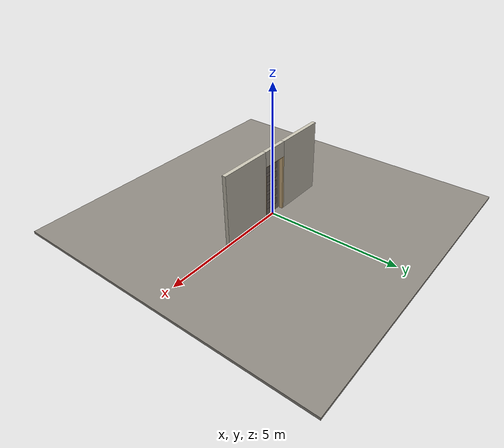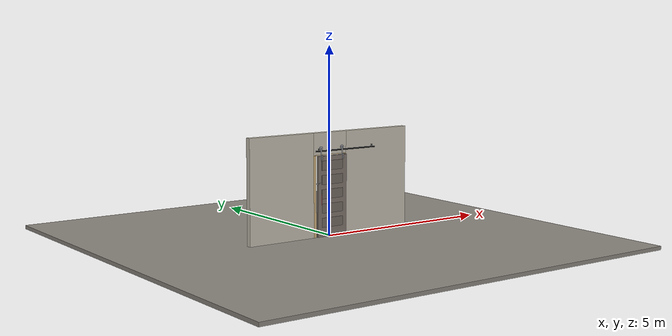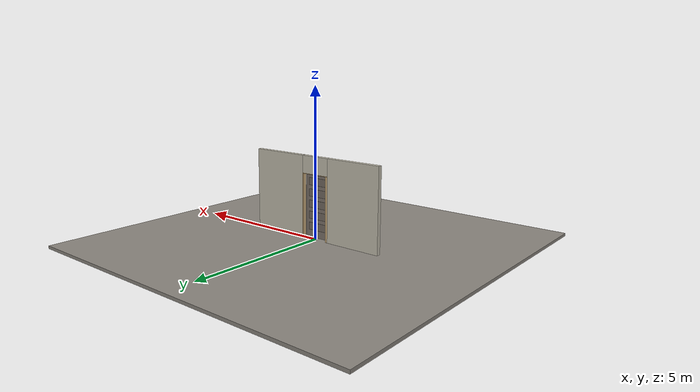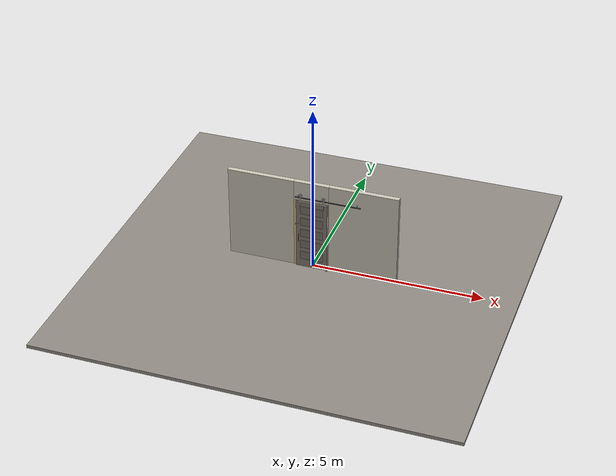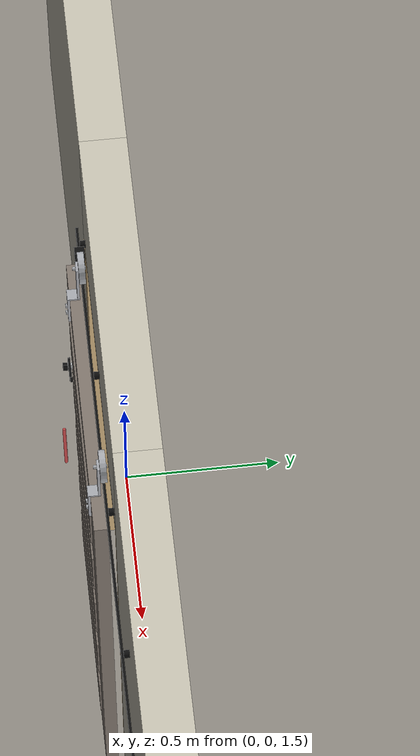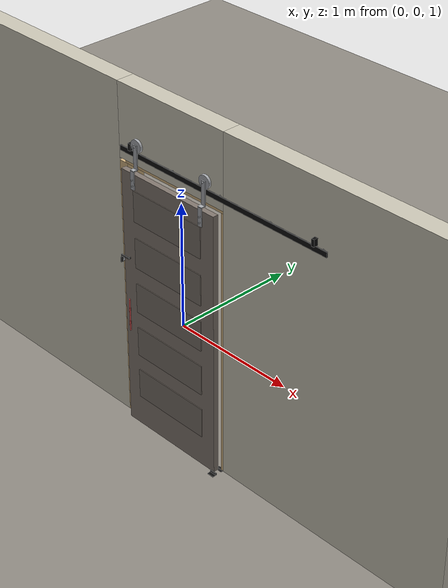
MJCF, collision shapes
<?xml version="1.0" ?>
<mujoco model="db0512_sliding_single_full">
  <compiler angle="radian" meshdir="../../hardware" texturedir="../../textures" autolimits="true" inertiafromgeom="false"/>
  <option timestep="0.002" integrator="implicitfast" cone="elliptic" impratio="10" noslip_iterations="3">
    <flag multiccd="enable"/>
  </option>
  <size memory="16M"/>
  <default>
    <geom condim="4" solref="0.005 1" solimp="0.95 0.99 0.001"/>
    <joint solreflimit="0.005 1" solimplimit="0.95 0.99 0.001"/>
    <tendon solreflimit="0.005 1"/>
    <equality solref="0.002 1"/>
  </default>
  <visual>
    <headlight ambient="0.4 0.4 0.4" diffuse="0.7 0.7 0.7" specular="0.2 0.2 0.2"/>
    <quality shadowsize="4096"/>
    <map znear="0.01" zfar="60"/>
  </visual>
  <asset>
    <mesh name="pull_2b47e55ff8" file="pull_2b47e55ff8.obj"/>
    <material name="mat_floor" rgba="0.55 0.53 0.5 1" specular="0.2" shininess="0.15" reflectance="0"/>
    <material name="mat_wall" rgba="0.78 0.76 0.7 1" specular="0.2" shininess="0.1" reflectance="0"/>
    <material name="mat_frame" rgba="0.82 0.7 0.5 1" specular="0.2" shininess="0.45" reflectance="0"/>
    <material name="mat_track" rgba="0.05 0.05 0.05 1" specular="0.38" shininess="0.3" reflectance="0.12"/>
    <material name="mat_leaf" rgba="0.5 0.46 0.425 1" specular="0.2" shininess="0.15" reflectance="0"/>
    <material name="mat_leaf_panel" rgba="0.46 0.423 0.391 1" specular="0.2" shininess="0.15" reflectance="0"/>
    <material name="mat_roller" rgba="0.65 0.66 0.68 1" specular="0.74" shininess="0.5" reflectance="0.36"/>
    <material name="mat_op_black_matte_metal" rgba="0.05 0.05 0.05 1" specular="0.38" shininess="0.3" reflectance="0.12"/>
    <material name="mat_teardrop" rgba="0.05 0.05 0.05 1" specular="0.38" shininess="0.3" reflectance="0.12"/>
    <material name="mat_hook" rgba="0.75 0.76 0.77 1" specular="0.8" shininess="0.65" reflectance="0.4"/>
    <texture name="skybox" type="skybox" builtin="gradient" rgb1="0.6 0.7 0.85" rgb2="0.9 0.92 0.95" width="256" height="256"/>
  </asset>
  <worldbody>
    <light name="sun" pos="1.5 -2.5 4" dir="-0.3 0.5 -0.8" directional="true" diffuse="0.8 0.8 0.8" specular="0.3 0.3 0.3" castshadow="true"/>
    <light name="fill" pos="-1.5 2.5 3" dir="0.3 -0.5 -0.7" directional="true" diffuse="0.35 0.35 0.4" castshadow="false"/>
    <camera name="robot_view" pos="0 -2.644375 1.817425" xyaxes="1 0 0 0 0.26963 0.962964" fovy="52"/>
    <camera name="far_view" pos="0 2.644375 1.817425" xyaxes="-1 0 0 0 -0.26963 0.962964" fovy="52"/>
    <camera name="iso" pos="2.009725 -2.221275 2.240525" xyaxes="0.741536 0.670913 0 -0.242917 0.268487 0.932151" fovy="46"/>
    <camera name="detail_handle" pos="-0.187 -0.9815 1.28" xyaxes="0.97561 0.219512 0 -0.070934 0.315262 0.94635" fovy="38"/>
    <geom name="floor" type="box" size="6 6 0.05" pos="0 0 -0.05" material="mat_floor" group="0" contype="1" conaffinity="1" friction="0.8 0.005 0.0001" density="2400"/>
    <geom name="wall_left" type="box" size="0.977 0.0725 1.377" pos="-1.523 0 1.377" material="mat_wall" group="0" contype="1" conaffinity="1" friction="0.6 0.005 0.0001" density="800"/>
    <geom name="wall_right" type="box" size="1.007 0.0725 1.377" pos="1.493 0 1.377" material="mat_wall" group="0" contype="1" conaffinity="1" friction="0.6 0.005 0.0001" density="800"/>
    <geom name="wall_header" type="box" size="0.516 0.0725 0.2905" pos="-0.03 0 2.4635" material="mat_wall" group="0" contype="1" conaffinity="1" friction="0.6 0.005 0.0001" density="800"/>
    <geom name="jamb_r" type="box" size="0.0095 0.0725 1.077" pos="0.4765 0 1.077" material="mat_frame" group="0" contype="1" conaffinity="1" friction="0.6 0.005 0.0001" density="300"/>
    <geom name="jamb_head" type="box" size="0.486 0.0725 0.0095" pos="0 0 2.1635" material="mat_frame" group="0" contype="1" conaffinity="1" friction="0.6 0.005 0.0001" density="300"/>
    <geom name="flat_track" type="box" size="0.964 0.004 0.02" pos="0.457 -0.0945 2.274" material="mat_track" group="0" contype="1" conaffinity="1" friction="0.6 0.005 0.0001" density="7850"/>
    <geom name="track_standoff_0" type="cylinder" size="0.012 0.009" pos="-0.457 -0.0815 2.274" quat="0.707107 -0.707107 0 0" material="mat_track" group="1" contype="0" conaffinity="0" density="7850"/>
    <geom name="track_standoff_1" type="cylinder" size="0.012 0.009" pos="0 -0.0815 2.274" quat="0.707107 -0.707107 0 0" material="mat_track" group="1" contype="0" conaffinity="0" density="7850"/>
    <geom name="track_standoff_2" type="cylinder" size="0.012 0.009" pos="0.457 -0.0815 2.274" quat="0.707107 -0.707107 0 0" material="mat_track" group="1" contype="0" conaffinity="0" density="7850"/>
    <geom name="track_standoff_3" type="cylinder" size="0.012 0.009" pos="0.914 -0.0815 2.274" quat="0.707107 -0.707107 0 0" material="mat_track" group="1" contype="0" conaffinity="0" density="7850"/>
    <geom name="track_standoff_4" type="cylinder" size="0.012 0.009" pos="1.371 -0.0815 2.274" quat="0.707107 -0.707107 0 0" material="mat_track" group="1" contype="0" conaffinity="0" density="7850"/>
    <geom name="leaf_track_stop_l" type="box" size="0.012 0.016 0.027" pos="-0.399 -0.0945 2.319" material="mat_track" group="0" contype="1" conaffinity="1" friction="0.6 0.005 0.0001" density="7850"/>
    <geom name="leaf_track_stop_r" type="box" size="0.012 0.016 0.027" pos="1.313 -0.0945 2.319" material="mat_track" group="0" contype="1" conaffinity="1" friction="0.6 0.005 0.0001" density="7850"/>
    <geom name="leaf_teardrop_keeper_post" type="box" size="0.005 0.006 0.018" pos="-0.462 -0.1465 1.416" material="mat_teardrop" group="0" contype="1" conaffinity="1" friction="0.6 0.005 0.0001" density="7800"/>
    <geom name="leaf_teardrop_keeper_base" type="box" size="0.005 0.008 0.02" pos="-0.462 -0.1605 1.42" material="mat_teardrop" group="1" contype="0" conaffinity="0" density="7800"/>
    <geom name="jamb_latch_0" type="box" size="0.0395 0.0725 1.077" pos="-0.5065 0 1.077" material="mat_frame" group="0" contype="1" conaffinity="1" friction="0.6 0.005 0.0001" density="300"/>
    <geom name="floor_guide_n" type="box" size="0.028 0.004 0.009" pos="0.457 -0.1415 0.009" material="mat_track" group="0" contype="1" conaffinity="1" friction="0.6 0.005 0.0001" density="7850"/>
    <geom name="floor_guide_n_foot" type="box" size="0.028 0.018 0.002" pos="0.457 -0.1555 0.002" material="mat_track" group="0" contype="1" conaffinity="1" friction="0.6 0.005 0.0001" density="7850"/>
    <geom name="floor_guide_p" type="box" size="0.028 0.004 0.009" pos="0.457 -0.0875 0.009" material="mat_track" group="0" contype="1" conaffinity="1" friction="0.6 0.005 0.0001" density="7850"/>
    <geom name="floor_guide_p_foot" type="box" size="0.028 0.018 0.002" pos="0.457 -0.0735 0.002" material="mat_track" group="0" contype="1" conaffinity="1" friction="0.6 0.005 0.0001" density="7850"/>
    <geom name="leaf_teardrop_keeper_base_arm" type="box" size="0.005 0.0405 0.016" pos="-0.462 -0.1125 1.42" material="mat_hook" group="1" contype="0" conaffinity="0" density="7850"/>
    <site name="approach_point" pos="0 -1.5 0" quat="1 0 0 0" size="0.05" rgba="0.2 0.9 0.2 0.5" group="4"/>
    <site name="goal_point" pos="0 1.5 0" quat="1 0 0 0" size="0.05" rgba="0.2 0.9 0.2 0.5" group="4"/>
    <site name="door_plane_center" pos="0 0 1.077" quat="1 0 0 0" size="0.02" rgba="0.2 0.9 0.2 0.5" group="4"/>
    <body name="leaf" pos="0 -0.1145 0">
      <inertial pos="-0.003947 0.000131 1.189358" mass="42.091617" quat="0.500893 0.49814 0.500668 -0.500294" diaginertia="3.14069186 19.488277612 22.610706095"/>
      <joint name="leaf_slide" type="slide" axis="1 0 0" limited="true" range="0 0.914" damping="4.110703" frictionloss="32.290319" armature="0.5"/>
      <geom name="leaf_slab" type="box" size="0.457 0.022 1.067" pos="0 0 1.079" material="mat_leaf" group="0" contype="1" conaffinity="1" friction="0.45 0.005 0.0001" density="1"/>
      <geom name="leaf_panel_0_n" type="box" size="0.33646 0.003 0.123256" pos="0 -0.025 0.389996" material="mat_leaf_panel" group="1" contype="0" conaffinity="0" density="1"/>
      <geom name="leaf_panel_0_p" type="box" size="0.33646 0.003 0.123256" pos="0 0.025 0.389996" material="mat_leaf_panel" group="1" contype="0" conaffinity="0" density="1"/>
      <geom name="leaf_panel_1_n" type="box" size="0.33646 0.003 0.123256" pos="0 -0.025 0.766508" material="mat_leaf_panel" group="1" contype="0" conaffinity="0" density="1"/>
      <geom name="leaf_panel_1_p" type="box" size="0.33646 0.003 0.123256" pos="0 0.025 0.766508" material="mat_leaf_panel" group="1" contype="0" conaffinity="0" density="1"/>
      <geom name="leaf_panel_2_n" type="box" size="0.33646 0.003 0.123256" pos="0 -0.025 1.14302" material="mat_leaf_panel" group="1" contype="0" conaffinity="0" density="1"/>
      <geom name="leaf_panel_2_p" type="box" size="0.33646 0.003 0.123256" pos="0 0.025 1.14302" material="mat_leaf_panel" group="1" contype="0" conaffinity="0" density="1"/>
      <geom name="leaf_panel_3_n" type="box" size="0.33646 0.003 0.123256" pos="0 -0.025 1.519532" material="mat_leaf_panel" group="1" contype="0" conaffinity="0" density="1"/>
      <geom name="leaf_panel_3_p" type="box" size="0.33646 0.003 0.123256" pos="0 0.025 1.519532" material="mat_leaf_panel" group="1" contype="0" conaffinity="0" density="1"/>
      <geom name="leaf_panel_4_n" type="box" size="0.33646 0.003 0.123256" pos="0 -0.025 1.896044" material="mat_leaf_panel" group="1" contype="0" conaffinity="0" density="1"/>
      <geom name="leaf_panel_4_p" type="box" size="0.33646 0.003 0.123256" pos="0 0.025 1.896044" material="mat_leaf_panel" group="1" contype="0" conaffinity="0" density="1"/>
      <geom name="leaf_hanger_wheel_0" type="cylinder" size="0.05 0.01" pos="-0.337 0.02 2.344" quat="0.707107 -0.707107 0 0" material="mat_roller" group="1" contype="0" conaffinity="0" density="7850"/>
      <geom name="leaf_hanger_mount_0" type="box" size="0.018 0.004 0.0725" pos="-0.337 -0.026 2.0985" material="mat_roller" group="1" contype="0" conaffinity="0" density="7850"/>
      <geom name="leaf_hanger_strap_0" type="box" size="0.018 0.004 0.0925" pos="-0.337 0.006 2.2635" material="mat_roller" group="1" contype="0" conaffinity="0" density="7850"/>
      <geom name="leaf_hanger_bend_0" type="box" size="0.018 0.02 0.004" pos="-0.337 -0.01 2.171" material="mat_roller" group="1" contype="0" conaffinity="0" density="7850"/>
      <geom name="leaf_hanger_axle_0" type="cylinder" size="0.006 0.021" pos="-0.337 0.013 2.344" quat="0.707107 -0.707107 0 0" material="mat_roller" group="1" contype="0" conaffinity="0" density="7850"/>
      <geom name="leaf_hanger_bolt_0_90" type="cylinder" size="0.007 0.004" pos="-0.337 -0.032 2.056" quat="0.707107 -0.707107 0 0" material="mat_roller" group="1" contype="0" conaffinity="0" density="7850"/>
      <geom name="leaf_hanger_bolt_0_45" type="cylinder" size="0.007 0.004" pos="-0.337 -0.032 2.101" quat="0.707107 -0.707107 0 0" material="mat_roller" group="1" contype="0" conaffinity="0" density="7850"/>
      <geom name="leaf_hanger_wheel_1" type="cylinder" size="0.05 0.01" pos="0.337 0.02 2.344" quat="0.707107 -0.707107 0 0" material="mat_roller" group="1" contype="0" conaffinity="0" density="7850"/>
      <geom name="leaf_hanger_mount_1" type="box" size="0.018 0.004 0.0725" pos="0.337 -0.026 2.0985" material="mat_roller" group="1" contype="0" conaffinity="0" density="7850"/>
      <geom name="leaf_hanger_strap_1" type="box" size="0.018 0.004 0.0925" pos="0.337 0.006 2.2635" material="mat_roller" group="1" contype="0" conaffinity="0" density="7850"/>
      <geom name="leaf_hanger_bend_1" type="box" size="0.018 0.02 0.004" pos="0.337 -0.01 2.171" material="mat_roller" group="1" contype="0" conaffinity="0" density="7850"/>
      <geom name="leaf_hanger_axle_1" type="cylinder" size="0.006 0.021" pos="0.337 0.013 2.344" quat="0.707107 -0.707107 0 0" material="mat_roller" group="1" contype="0" conaffinity="0" density="7850"/>
      <geom name="leaf_hanger_bolt_1_90" type="cylinder" size="0.007 0.004" pos="0.337 -0.032 2.056" quat="0.707107 -0.707107 0 0" material="mat_roller" group="1" contype="0" conaffinity="0" density="7850"/>
      <geom name="leaf_hanger_bolt_1_45" type="cylinder" size="0.007 0.004" pos="0.337 -0.032 2.101" quat="0.707107 -0.707107 0 0" material="mat_roller" group="1" contype="0" conaffinity="0" density="7850"/>
      <geom name="leaf_pull_n" type="mesh" mesh="pull_2b47e55ff8" pos="-0.367 -0.022 1" quat="0 0 -0.707107 0.707107" material="mat_op_black_matte_metal" group="1" contype="0" conaffinity="0" density="3000"/>
      <geom name="leaf_pull_col_n" type="capsule" size="0.006 0.13" pos="-0.367 -0.067 1" material="mat_op_black_matte_metal" group="3" contype="1" conaffinity="1" rgba="0.8 0.3 0.3 0.25" friction="0.7 0.01 0.0001" density="3000"/>
      <site name="leaf_pull_grip_n" pos="-0.367 -0.067 1" quat="1 0 0 0" size="0.012" rgba="0.2 0.9 0.2 0.5" group="4"/>
      <site name="leaf_edge_mid" pos="-0.457 0 1.079" quat="1 0 0 0" size="0.02" rgba="0.2 0.9 0.2 0.5" group="4"/>
      <body name="leaf_teardrop" pos="-0.397 -0.032 1.45">
        <inertial pos="-0.043422 0.00123 -0.01162" mass="0.122437" quat="0.688754 0.704878 -0.099431 0.137401" diaginertia="0.000019179 0.000140472 0.000156801"/>
        <joint name="leaf_teardrop_hinge" type="hinge" axis="0 1 0" limited="true" range="0 1.4" damping="0.005199" frictionloss="0.004386" armature="0.0001"/>
        <geom name="leaf_teardrop_top" type="box" size="0.04 0.004 0.006" pos="-0.04 0 -0.005" material="mat_teardrop" group="0" contype="1" conaffinity="1" friction="0.6 0.005 0.0001" density="7800"/>
        <geom name="leaf_teardrop_end" type="box" size="0.005 0.004 0.03" pos="-0.078 0 -0.03" material="mat_teardrop" group="0" contype="1" conaffinity="1" friction="0.6 0.005 0.0001" density="7800"/>
        <geom name="leaf_teardrop_boss" type="cylinder" size="0.008 0.008" pos="0 0.006 0" quat="0.707107 -0.707107 0 0" material="mat_teardrop" group="1" contype="0" conaffinity="0" density="7800"/>
        <site name="leaf_teardrop_grip" pos="-0.078 -0.01 -0.05" quat="1 0 0 0" size="0.01" rgba="0.2 0.9 0.2 0.5" group="4"/>
      </body>
    </body>
  </worldbody>
  <sensor>
    <jointpos name="leaf_slide_pos" joint="leaf_slide"/>
    <jointvel name="leaf_slide_vel" joint="leaf_slide"/>
    <jointpos name="leaf_teardrop_hinge_pos" joint="leaf_teardrop_hinge"/>
    <jointvel name="leaf_teardrop_hinge_vel" joint="leaf_teardrop_hinge"/>
  </sensor>
</mujoco>
